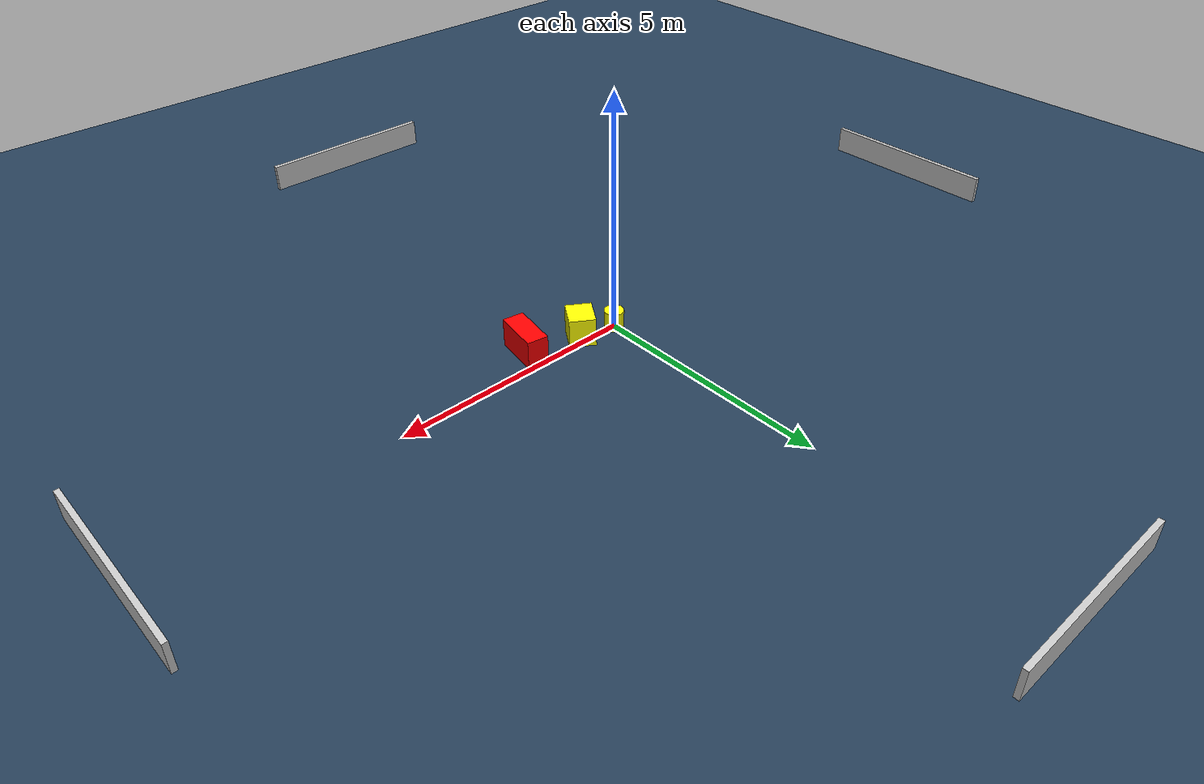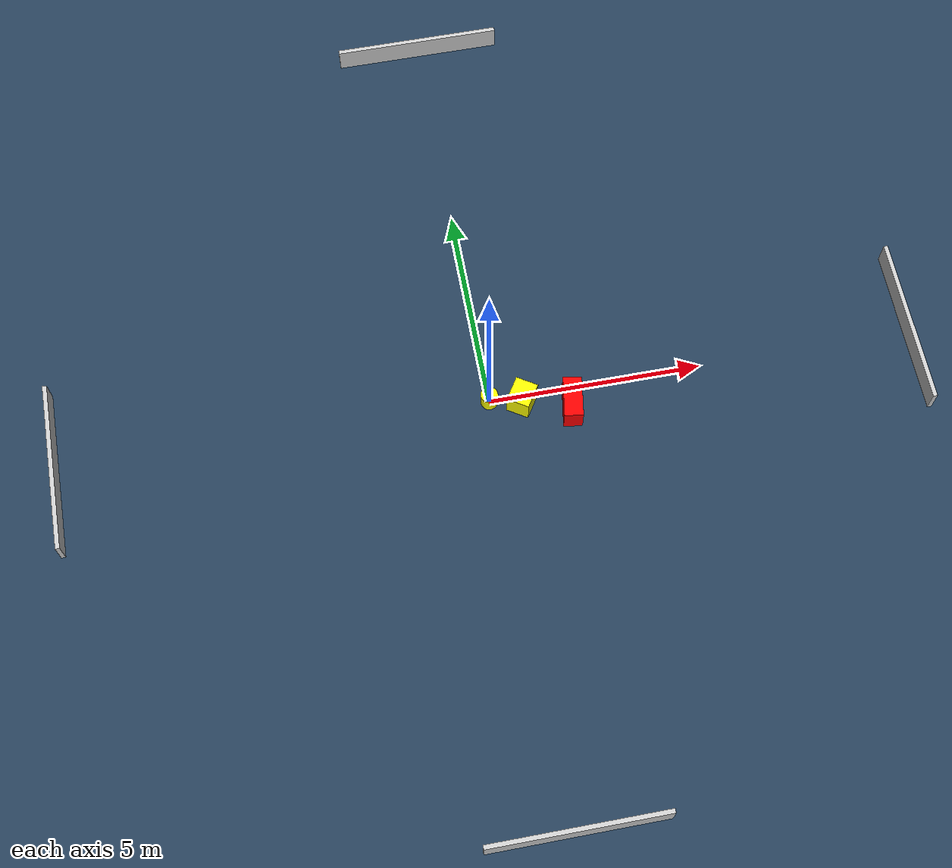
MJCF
<?xml version="1.0" ?>
<mujoco model="generated_environment">
  <option timestep="0.01" integrator="RK4" cone="elliptic"/>
  <default>
    <geom density="1"/>
  </default>
  <asset>
    <texture builtin="gradient" height="3072" name="skybox" rgb1="0.3 0.5 0.7" rgb2="0 0 0" type="skybox" width="512"/>
    <texture builtin="checker" height="300" name="groundplane" rgb1="0.2 0.3 0.4" rgb2="0.1 0.2 0.3" type="2d" width="300"/>
    <material name="groundplane" reflectance="0.2" texrepeat="5 5" texture="groundplane"/>
  </asset>
  <worldbody>
    <light dir="0 0 -1" directional="true" pos="0 0 1.5"/>
    <geom condim="3" friction="0.5 0.005 0.001" material="groundplane" name="floor" pos="0 0 0" size="0 0 0.05" type="plane"/>
    <body name="walls">
      <geom name="wall_1" condim="4" pos="-10.0 0.0 0.3" rgba="0.800000011920929 0.800000011920929 0.800000011920929 1.0" size="0.05 2.0 0.3" type="box"/>
      <geom name="wall_2" condim="4" pos="10.0 0.0 0.3" rgba="0.800000011920929 0.800000011920929 0.800000011920929 1.0" size="0.05 2.0 0.3" type="box"/>
      <geom name="wall_3" condim="4" pos="0.0 -10.0 0.3" rgba="0.800000011920929 0.800000011920929 0.800000011920929 1.0" size="2.0 0.05 0.3" type="box"/>
      <geom name="wall_4" condim="4" pos="0.0 10.0 0.3" rgba="0.800000011920929 0.800000011920929 0.800000011920929 1.0" size="2.0 0.05 0.3" type="box"/>
    </body>
    <body name="robot">
      <joint name="joint_x" type="slide" pos="0 0 0" axis="1 0 0"/>
      <joint name="joint_y" type="slide" pos="0 0 0" axis="0 1 0"/>
      <geom name="robot" type="cylinder" pos="0.0 0.0 0.2" size="0.2 0.2 0.0" mass="5.0" friction="1.0 0.005 0.0001" condim="4" rgba="1.0 1.0 0.0 1.0"/>
    </body>
    <body name="obstacle_1_movable">
      <geom name="obstacle_1_movable" condim="4" pos="0.7420213927928232 -0.16559340194495684 0.3" euler="0 0 147.4758772299954" friction="0.0 0.005 0.001" rgba="1.0 1.0 0.0 1.0" size="0.26636027474795443 0.2989138616934078 0.3" type="box" mass="0.1"/>
      <joint type="free"/>
    </body>
    <body name="obstacle_2_static">
      <geom name="obstacle_2_static" condim="4" pos="1.8607986246148527 -0.48214558566016347 0.3" euler="0 0 260.68598042370894" friction="0.0 0.005 0.001" rgba="1.0 0.0 0.0 1.0" size="0.47983860874696505 0.218147025750251 0.3" type="box"/>
    </body>
  </worldbody>
  <actuator>
    <motor name="actuator_x" joint="joint_x" gear="1" ctrlrange="-1 1"/>
    <motor name="actuator_y" joint="joint_y" gear="1" ctrlrange="-1 1"/>
  </actuator>
</mujoco>
